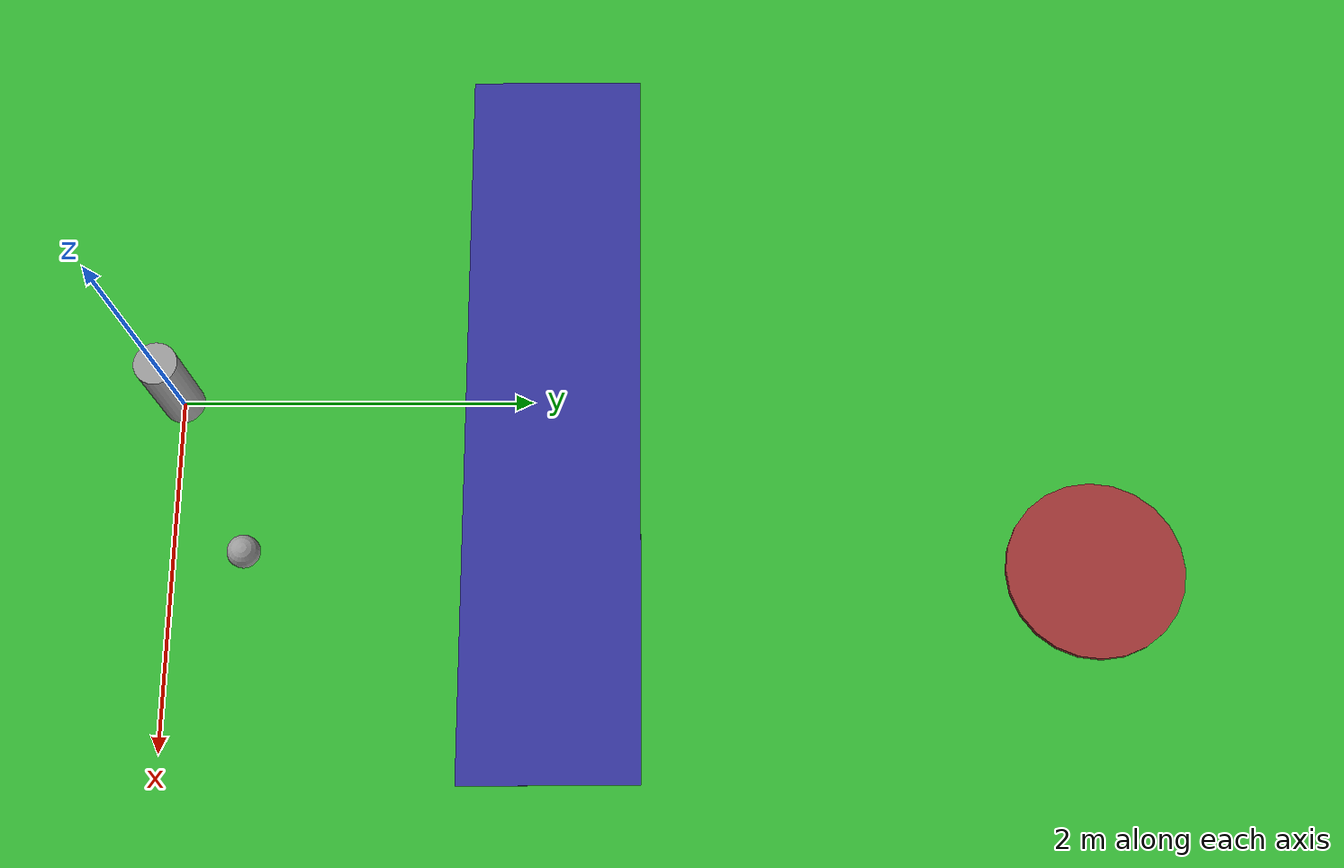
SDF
<sdf version="1.7">
 <world name="default">
  <light name="sun" type="directional">
   <pose>0 0 10 0 -0 0</pose>
   <diffuse>0.8 0.8 0.8 1</diffuse>
   <specular>0.2 0.2 0.2 1</specular>
   <attenuation>
    <range>1000</range>
    <constant>0.9</constant>
    <linear>0.01</linear>
    <quadratic>0.001</quadratic>
   </attenuation>
   <direction>-0.5 0.1 -0.9</direction>
   <spot><inner_angle>0</inner_angle><outer_angle>0</outer_angle><falloff>0</falloff></spot>
  </light>
  <model name="ground_plane">
   <static>1</static>
   <link name="link">
    <collision name="collision">
     <geometry><plane><normal>0 0 1</normal><size>100 100</size></plane></geometry>
     <surface>
      <contact><collide_bitmask>65535</collide_bitmask></contact>
      <friction><ode><mu>100</mu><mu2>50</mu2></ode></friction>
     </surface>
    </collision>
    <visual name="visual">
     <cast_shadows>0</cast_shadows>
     <geometry><plane><normal>0 0 1</normal><size>100 100</size></plane></geometry>
     <material>
      <script><uri>file://media/materials/scripts/gazebo.material</uri><name>Gazebo/Grey</name></script>
     </material>
    </visual>
   </link>
  </model>
  <gravity>0 0 -9.8</gravity>
  <magnetic_field>6e-06 2.3e-05 -4.2e-05</magnetic_field>
  <atmosphere type="adiabatic"/>
  <physics type="ode">
   <max_step_size>0.001</max_step_size>
   <real_time_factor>1</real_time_factor>
   <real_time_update_rate>1000</real_time_update_rate>
  </physics>
  <scene><ambient>0.4 0.4 0.4 1</ambient><background>0.7 0.7 0.7 1</background><shadows>1</shadows></scene>
  <spherical_coordinates>
   <surface_model>EARTH_WGS84</surface_model>
   <latitude_deg>0</latitude_deg>
   <longitude_deg>0</longitude_deg>
   <elevation>0</elevation>
   <heading_deg>0</heading_deg>
  </spherical_coordinates>
  <model name="green_plane">
   <link name="link">
    <inertial>
     <mass>1</mass>
     <inertia>
      <ixx>0.166667</ixx>
      <ixy>0</ixy>
      <ixz>0</ixz>
      <iyy>0.166667</iyy>
      <iyz>0</iyz>
      <izz>0.166667</izz>
     </inertia>
    </inertial>
    <visual name="visual">
     <geometry><box><size>9.55385 31.6646 0.021987</size></box></geometry>
     <material>
      <script><name>Gazebo/Grey</name><uri>file://media/materials/scripts/gazebo.material</uri></script>
      <shader type="pixel"><normal_map>__default__</normal_map></shader>
      <ambient>0.2 0.7 0.2 1</ambient>
      <diffuse>0.7 0.7 0.7 1</diffuse>
      <specular>0.01 0.01 0.01 1</specular>
      <emissive>0 0 0 1</emissive>
      <lighting>1</lighting>
     </material>
    </visual>
    <collision name="collision">
     <geometry><box><size>9.55385 31.6646 0.021987</size></box></geometry>
     <surface>
      <friction>
       <ode><mu>1</mu><mu2>1</mu2><fdir1>0 0 0</fdir1><slip1>0</slip1><slip2>0</slip2></ode>
       <torsional>
        <coefficient>1</coefficient>
        <patch_radius>0</patch_radius>
        <surface_radius>0</surface_radius>
        <use_patch_radius>1</use_patch_radius>
        <ode><slip>0</slip></ode>
       </torsional>
      </friction>
      <bounce><restitution_coefficient>0</restitution_coefficient><threshold>1e+06</threshold></bounce>
      <contact>
       <collide_without_contact>0</collide_without_contact>
       <collide_without_contact_bitmask>1</collide_without_contact_bitmask>
       <collide_bitmask>1</collide_bitmask>
       <ode>
        <soft_cfm>0</soft_cfm>
        <soft_erp>0.2</soft_erp>
        <kp>1e+13</kp>
        <kd>1</kd>
        <max_vel>0.01</max_vel>
        <min_depth>0</min_depth>
       </ode>
       <bullet>
        <split_impulse>1</split_impulse>
        <split_impulse_penetration_threshold>-0.01</split_impulse_penetration_threshold>
        <soft_cfm>0</soft_cfm>
        <soft_erp>0.2</soft_erp>
        <kp>1e+13</kp>
        <kd>1</kd>
       </bullet>
      </contact>
     </surface>
    </collision>
   </link>
   <static>1</static>
   <pose>-0.02559 0.034766 0.010992 0 -0 0</pose>
  </model>
  <model name="ur5_base_tube">
   <link name="link">
    <inertial>
     <mass>1</mass>
     <inertia><ixx>0.145833</ixx><ixy>0</ixy><ixz>0</ixz><iyy>0.145833</iyy><iyz>0</iyz><izz>0.125</izz></inertia>
    </inertial>
    <visual name="visual">
     <geometry><cylinder><radius>0.119391</radius><length>0.7</length></cylinder></geometry>
     <material>
      <script><name>Gazebo/Grey</name><uri>file://media/materials/scripts/gazebo.material</uri></script>
      <shader type="pixel"><normal_map>__default__</normal_map></shader>
      <ambient>0.7 0.7 0.7 1</ambient>
      <diffuse>0.7 0.7 0.7 1</diffuse>
      <specular>0.01 0.01 0.01 1</specular>
      <emissive>0 0 0 1</emissive>
     </material>
    </visual>
    <collision name="collision">
     <geometry><cylinder><radius>0.119391</radius><length>0.622951</length></cylinder></geometry>
     <surface>
      <friction>
       <ode><mu>1</mu><mu2>1</mu2><fdir1>0 0 0</fdir1><slip1>0</slip1><slip2>0</slip2></ode>
       <torsional>
        <coefficient>1</coefficient>
        <patch_radius>0</patch_radius>
        <surface_radius>0</surface_radius>
        <use_patch_radius>1</use_patch_radius>
        <ode><slip>0</slip></ode>
       </torsional>
      </friction>
      <bounce><restitution_coefficient>0</restitution_coefficient><threshold>1e+06</threshold></bounce>
      <contact>
       <collide_without_contact>0</collide_without_contact>
       <collide_without_contact_bitmask>1</collide_without_contact_bitmask>
       <collide_bitmask>1</collide_bitmask>
       <ode>
        <soft_cfm>0</soft_cfm>
        <soft_erp>0.2</soft_erp>
        <kp>1e+13</kp>
        <kd>1</kd>
        <max_vel>0.01</max_vel>
        <min_depth>0</min_depth>
       </ode>
       <bullet>
        <split_impulse>1</split_impulse>
        <split_impulse_penetration_threshold>-0.01</split_impulse_penetration_threshold>
        <soft_cfm>0</soft_cfm>
        <soft_erp>0.2</soft_erp>
        <kp>1e+13</kp>
        <kd>1</kd>
       </bullet>
      </contact>
     </surface>
    </collision>
   </link>
   <static>1</static>
   <pose>0 4e-06 0.333466 2.4e-05 -3.1e-05 6.1e-05</pose>
  </model>
  <light name="user_directional_light_0" type="directional">
   <pose>0.600325 -1.68285 1 0 -0 0</pose>
   <diffuse>0.5 0.5 0.5 1</diffuse>
   <specular>0.1 0.1 0.1 1</specular>
   <direction>0.1 0.1 -0.9</direction>
   <attenuation>
    <range>20</range>
    <constant>0.5</constant>
    <linear>0.01</linear>
    <quadratic>0.001</quadratic>
   </attenuation>
   <spot><inner_angle>0</inner_angle><outer_angle>0</outer_angle><falloff>0</falloff></spot>
  </light>
  <model name="water_obs">
   <link name="link">
    <inertial>
     <mass>1</mass>
     <inertia>
      <ixx>0.166667</ixx>
      <ixy>0</ixy>
      <ixz>0</ixz>
      <iyy>0.166667</iyy>
      <iyz>0</iyz>
      <izz>0.166667</izz>
     </inertia>
    </inertial>
    <visual name="visual">
     <geometry><box><size>4.21745 1 0.002146</size></box></geometry>
     <material>
      <script><name>Gazebo/Grey</name><uri>file://media/materials/scripts/gazebo.material</uri></script>
      <shader type="pixel"><normal_map>__default__</normal_map></shader>
      <ambient>0.2 0.2 0.6 1</ambient>
      <diffuse>0.7 0.7 0.7 1</diffuse>
      <specular>0.01 0.01 0.01 1</specular>
      <emissive>0 0 0 1</emissive>
     </material>
    </visual>
    <collision name="collision">
     <geometry><box><size>4.21745 1 0.002146</size></box></geometry>
     <surface>
      <friction>
       <ode><mu>1</mu><mu2>1</mu2><fdir1>0 0 0</fdir1><slip1>0</slip1><slip2>0</slip2></ode>
       <torsional>
        <coefficient>1</coefficient>
        <patch_radius>0</patch_radius>
        <surface_radius>0</surface_radius>
        <use_patch_radius>1</use_patch_radius>
        <ode><slip>0</slip></ode>
       </torsional>
      </friction>
      <bounce><restitution_coefficient>0</restitution_coefficient><threshold>1e+06</threshold></bounce>
      <contact>
       <collide_without_contact>0</collide_without_contact>
       <collide_without_contact_bitmask>1</collide_without_contact_bitmask>
       <collide_bitmask>1</collide_bitmask>
       <ode>
        <soft_cfm>0</soft_cfm>
        <soft_erp>0.2</soft_erp>
        <kp>1e+13</kp>
        <kd>1</kd>
        <max_vel>0.01</max_vel>
        <min_depth>0</min_depth>
       </ode>
       <bullet>
        <split_impulse>1</split_impulse>
        <split_impulse_penetration_threshold>-0.01</split_impulse_penetration_threshold>
        <soft_cfm>0</soft_cfm>
        <soft_erp>0.2</soft_erp>
        <kp>1e+13</kp>
        <kd>1</kd>
       </bullet>
      </contact>
     </surface>
    </collision>
   </link>
   <static>1</static>
   <pose>0.081044 2.11619 0.050967 -1.5e-05 -0 -1e-06</pose>
  </model>
  <model name="gola">
   <link name="link">
    <inertial>
     <mass>1</mass>
     <inertia><ixx>0.145833</ixx><ixy>0</ixy><ixz>0</ixz><iyy>0.145833</iyy><iyz>0</iyz><izz>0.125</izz></inertia>
    </inertial>
    <visual name="visual">
     <geometry><cylinder><radius>0.5</radius><length>0.037387</length></cylinder></geometry>
     <material>
      <script><name>Gazebo/Grey</name><uri>file://media/materials/scripts/gazebo.material</uri></script>
      <shader type="pixel"><normal_map>__default__</normal_map></shader>
      <ambient>0.6 0.2 0.2 0</ambient>
      <diffuse>0.7 0.7 0.7 1</diffuse>
      <specular>0.01 0.01 0.01 1</specular>
      <emissive>0 0 0 1</emissive>
     </material>
    </visual>
    <collision name="collision">
     <geometry><cylinder><radius>0.5</radius><length>0.037387</length></cylinder></geometry>
     <surface>
      <friction>
       <ode><mu>1</mu><mu2>1</mu2><fdir1>0 0 0</fdir1><slip1>0</slip1><slip2>0</slip2></ode>
       <torsional>
        <coefficient>1</coefficient>
        <patch_radius>0</patch_radius>
        <surface_radius>0</surface_radius>
        <use_patch_radius>1</use_patch_radius>
        <ode><slip>0</slip></ode>
       </torsional>
      </friction>
      <bounce><restitution_coefficient>0</restitution_coefficient><threshold>1e+06</threshold></bounce>
      <contact>
       <collide_without_contact>0</collide_without_contact>
       <collide_without_contact_bitmask>1</collide_without_contact_bitmask>
       <collide_bitmask>1</collide_bitmask>
       <ode>
        <soft_cfm>0</soft_cfm>
        <soft_erp>0.2</soft_erp>
        <kp>1e+13</kp>
        <kd>1</kd>
        <max_vel>0.01</max_vel>
        <min_depth>0</min_depth>
       </ode>
       <bullet>
        <split_impulse>1</split_impulse>
        <split_impulse_penetration_threshold>-0.01</split_impulse_penetration_threshold>
        <soft_cfm>0</soft_cfm>
        <soft_erp>0.2</soft_erp>
        <kp>1e+13</kp>
        <kd>1</kd>
       </bullet>
      </contact>
     </surface>
    </collision>
   </link>
   <static>1</static>
   <pose>1.01874 5.14406 0.040669 0 -0 7e-06</pose>
  </model>
  <model name="golf_ball">
   <link name="link">
    <inertial>
     <mass>1</mass>
     <inertia><ixx>0.1</ixx><ixy>0</ixy><ixz>0</ixz><iyy>0.1</iyy><iyz>0</iyz><izz>0.1</izz></inertia>
    </inertial>
    <visual name="visual">
     <geometry><sphere><radius>0.0921297</radius></sphere></geometry>
     <material>
      <script><name>Gazebo/Grey</name><uri>file://media/materials/scripts/gazebo.material</uri></script>
      <shader type="pixel"><normal_map>__default__</normal_map></shader>
      <ambient>1 1 1 0</ambient>
      <diffuse>0.7 0.7 0.7 1</diffuse>
      <specular>0.01 0.01 0.01 1</specular>
      <emissive>0 0 0 1</emissive>
     </material>
    </visual>
    <collision name="collision">
     <geometry><sphere><radius>0.09213</radius></sphere></geometry>
     <surface>
      <friction>
       <ode><mu>1</mu><mu2>1</mu2><fdir1>0 0 0</fdir1><slip1>0</slip1><slip2>0</slip2></ode>
       <torsional>
        <coefficient>1</coefficient>
        <patch_radius>0</patch_radius>
        <surface_radius>0.1</surface_radius>
        <use_patch_radius>0</use_patch_radius>
        <ode><slip>0</slip></ode>
       </torsional>
      </friction>
      <bounce><restitution_coefficient>0.8</restitution_coefficient><threshold>0</threshold></bounce>
      <contact>
       <collide_without_contact>0</collide_without_contact>
       <collide_without_contact_bitmask>1</collide_without_contact_bitmask>
       <collide_bitmask>1</collide_bitmask>
       <ode>
        <soft_cfm>0</soft_cfm>
        <soft_erp>0.2</soft_erp>
        <kp>1e+13</kp>
        <kd>1</kd>
        <max_vel>1000</max_vel>
        <min_depth>0</min_depth>
       </ode>
       <bullet>
        <split_impulse>1</split_impulse>
        <split_impulse_penetration_threshold>-0.01</split_impulse_penetration_threshold>
        <soft_cfm>0</soft_cfm>
        <soft_erp>0.2</soft_erp>
        <kp>1e+13</kp>
        <kd>1</kd>
       </bullet>
      </contact>
     </surface>
    </collision>
   </link>
   <static>0</static>
   <pose>0.926066 0.437521 0.20513 -0.063941 0.025644 -0.002197</pose>
  </model>
  <model name="unit_cylinder">
   <pose>0.923671 0.430566 0.067495 -0.000897 -0.000918 -0.006087</pose>
   <link name="link">
    <inertial>
     <mass>1</mass>
     <inertia><ixx>0.145833</ixx><ixy>0</ixy><ixz>0</ixz><iyy>0.145833</iyy><iyz>0</iyz><izz>0.125</izz></inertia>
    </inertial>
    <collision name="collision">
     <geometry><cylinder><radius>0.0299696</radius><length>0.091019</length></cylinder></geometry>
    </collision>
    <visual name="visual">
     <geometry><cylinder><radius>0.0299696</radius><length>0.091019</length></cylinder></geometry>
     <material>
      <script><name>Gazebo/Grey</name><uri>file://media/materials/scripts/gazebo.material</uri></script>
     </material>
    </visual>
   </link>
  </model>
 </world>
</sdf>
